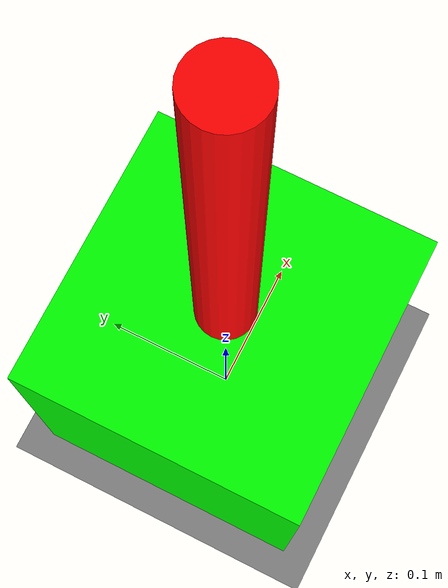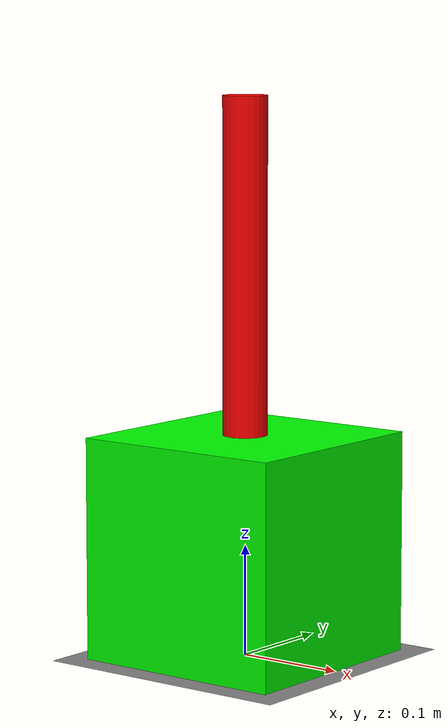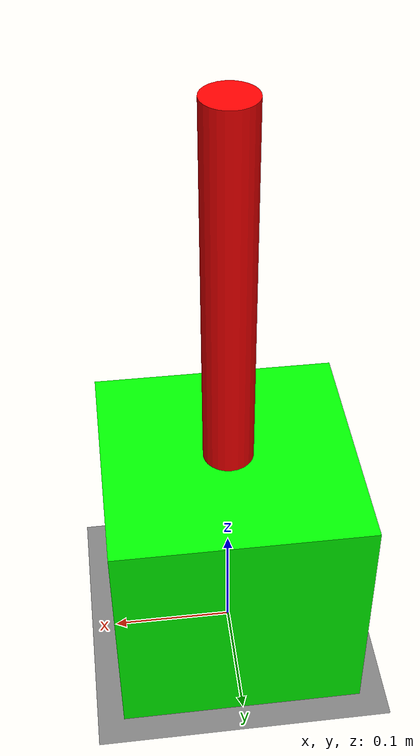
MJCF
<mujoco>
  <compiler coordinate="local" angle="radian"/>
  <option timestep="0.002"/>
  <worldbody>
    <light name="top" pos="0 0 2"/>
    <geom name="floor" type="plane" size="1 1 0.1" rgba="0.5 0.5 0.5 1"/>
    <body name="cart" pos="0 0 0.1">
      <joint name="slide" type="slide" axis="1 0 0" range="-2 2"/>
      <geom type="box" size="0.1 0.1 0.1" rgba="0 1 0 1"/>
      <body name="pole" pos="0 0 0.2">
        <joint name="hinge" type="hinge" axis="0 1 0" pos="0 0 -0.2"/>
        <geom type="cylinder" size="0.02 0.2" mass="0.1" rgba="1 0 0 1"/>
      </body>
    </body>
  </worldbody>
  <actuator>
    <motor name="cart_motor" joint="slide" gear="100"/>
  </actuator>
</mujoco>
